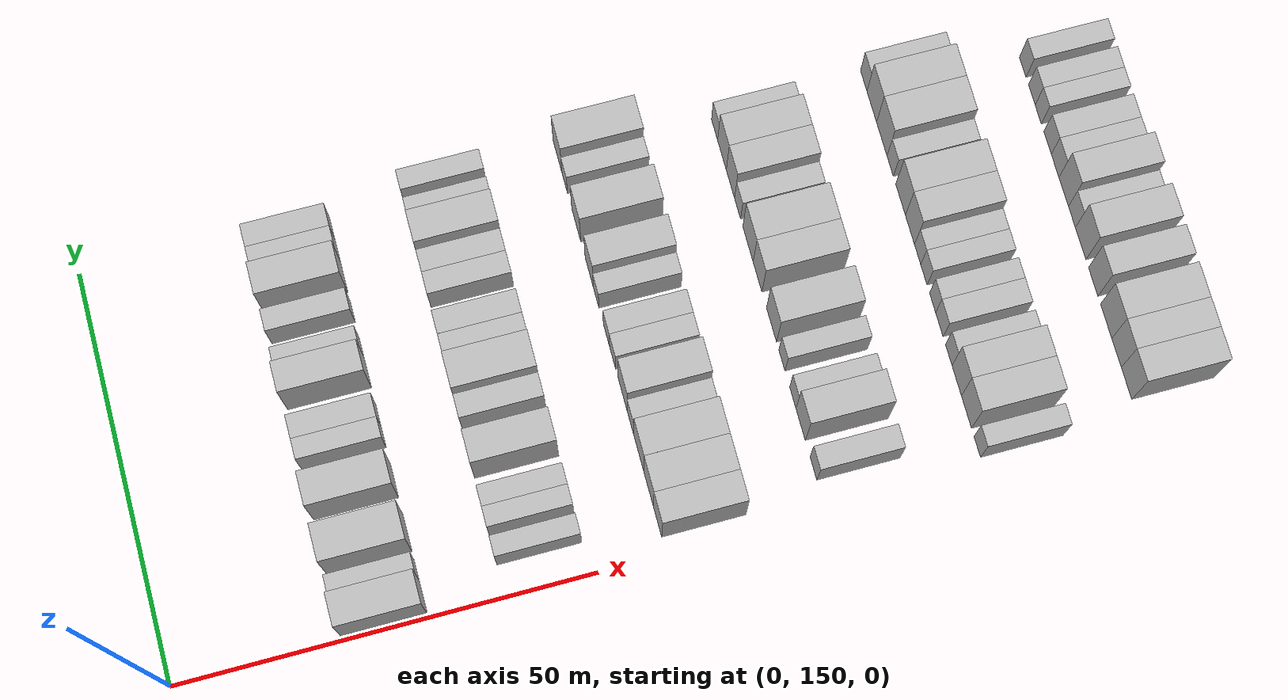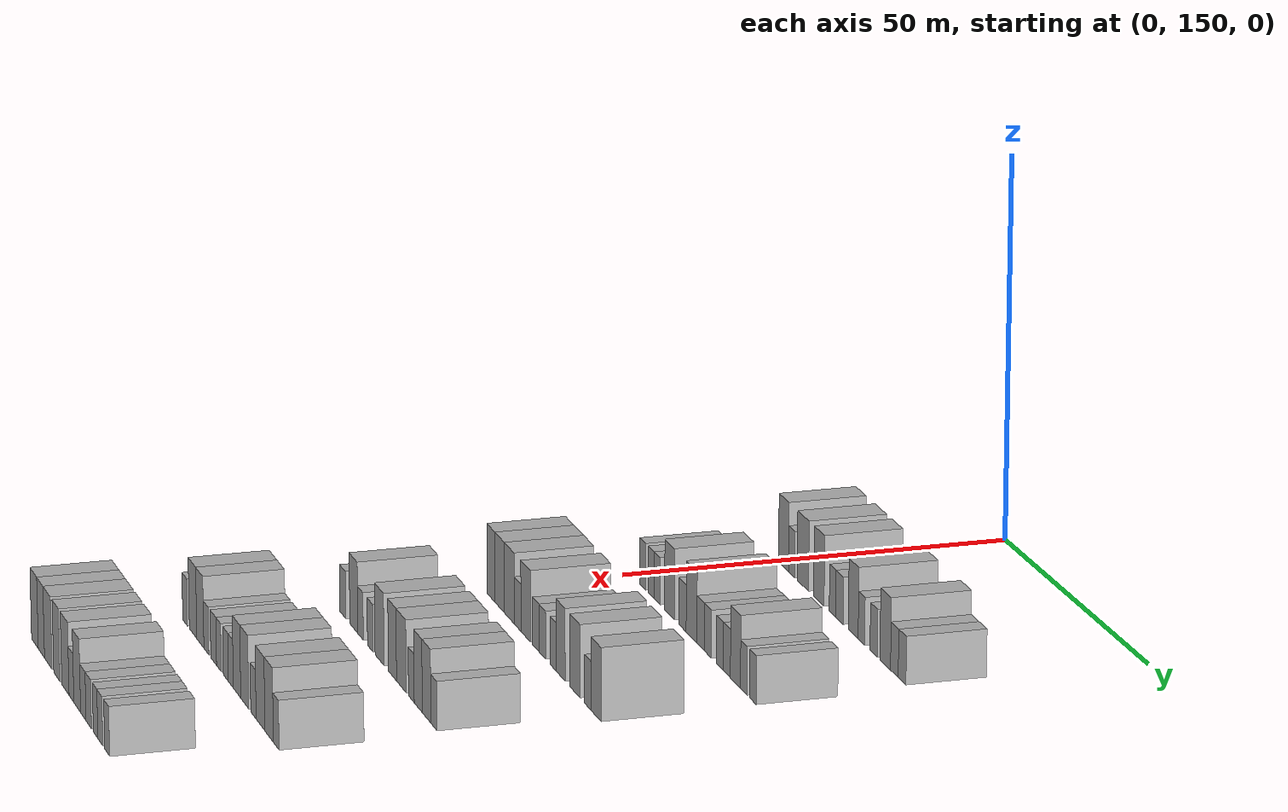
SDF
<sdf version="1.6">
 <world name="default">
  <model name="building_122">
   <static>1</static>
   <pose>25.0000 152.3645 0 0.000000 0.000000 0.000000</pose>
   <link name="link">
    <pose>0 0 4.50 0 0 0</pose>
    <collision name="collision"><geometry><box><size>10.0000 4.0132 9.0000</size></box></geometry></collision>
    <visual name="visual">
     <cast_shadows>0</cast_shadows>
     <geometry><box><size>10.0000 4.0132 9.0000</size></box></geometry>
     <material>
      <script>
       <uri>model://HANNAS_wall/materials/scripts</uri>
       <uri>model://HANNAS_wall/materials/textures</uri>
       <name>vrc/HANNAS_wall</name>
      </script>
     </material>
    </visual>
   </link>
  </model>
  <model name="building_123">
   <static>1</static>
   <pose>25.0000 155.5959 0 0.000000 0.000000 0.000000</pose>
   <link name="link">
    <pose>0 0 3.00 0 0 0</pose>
    <collision name="collision"><geometry><box><size>10.0000 2.4496 6.0000</size></box></geometry></collision>
    <visual name="visual">
     <cast_shadows>0</cast_shadows>
     <geometry><box><size>10.0000 2.4496 6.0000</size></box></geometry>
     <material>
      <script>
       <uri>model://HANNAS_wall/materials/scripts</uri>
       <uri>model://HANNAS_wall/materials/textures</uri>
       <name>vrc/HANNAS_wall</name>
      </script>
     </material>
    </visual>
   </link>
  </model>
  <model name="building_124">
   <static>1</static>
   <pose>25.0000 160.0640 0 0.000000 0.000000 0.000000</pose>
   <link name="link">
    <pose>0 0 4.50 0 0 0</pose>
    <collision name="collision"><geometry><box><size>10.0000 4.4866 9.0000</size></box></geometry></collision>
    <visual name="visual">
     <cast_shadows>0</cast_shadows>
     <geometry><box><size>10.0000 4.4866 9.0000</size></box></geometry>
     <material>
      <script>
       <uri>model://HANNAS_wall/materials/scripts</uri>
       <uri>model://HANNAS_wall/materials/textures</uri>
       <name>vrc/HANNAS_wall</name>
      </script>
     </material>
    </visual>
   </link>
  </model>
  <model name="building_125">
   <static>1</static>
   <pose>25.0000 166.3468 0 0.000000 0.000000 0.000000</pose>
   <link name="link">
    <pose>0 0 4.50 0 0 0</pose>
    <collision name="collision"><geometry><box><size>10.0000 4.0790 9.0000</size></box></geometry></collision>
    <visual name="visual">
     <cast_shadows>0</cast_shadows>
     <geometry><box><size>10.0000 4.0790 9.0000</size></box></geometry>
     <material>
      <script>
       <uri>model://HANNAS_wall/materials/scripts</uri>
       <uri>model://HANNAS_wall/materials/textures</uri>
       <name>vrc/HANNAS_wall</name>
      </script>
     </material>
    </visual>
   </link>
  </model>
  <model name="building_126">
   <static>1</static>
   <pose>25.0000 171.6309 0 0.000000 0.000000 0.000000</pose>
   <link name="link">
    <pose>0 0 3.00 0 0 0</pose>
    <collision name="collision"><geometry><box><size>10.0000 2.4892 6.0000</size></box></geometry></collision>
    <visual name="visual">
     <cast_shadows>0</cast_shadows>
     <geometry><box><size>10.0000 2.4892 6.0000</size></box></geometry>
     <material>
      <script>
       <uri>model://HANNAS_wall/materials/scripts</uri>
       <uri>model://HANNAS_wall/materials/textures</uri>
       <name>vrc/HANNAS_wall</name>
      </script>
     </material>
    </visual>
   </link>
  </model>
  <model name="building_127">
   <static>1</static>
   <pose>25.0000 174.2997 0 0.000000 0.000000 0.000000</pose>
   <link name="link">
    <pose>0 0 3.00 0 0 0</pose>
    <collision name="collision"><geometry><box><size>10.0000 2.8484 6.0000</size></box></geometry></collision>
    <visual name="visual">
     <cast_shadows>0</cast_shadows>
     <geometry><box><size>10.0000 2.8484 6.0000</size></box></geometry>
     <material>
      <script>
       <uri>model://HANNAS_wall/materials/scripts</uri>
       <uri>model://HANNAS_wall/materials/textures</uri>
       <name>vrc/HANNAS_wall</name>
      </script>
     </material>
    </visual>
   </link>
  </model>
  <model name="building_128">
   <static>1</static>
   <pose>25.0000 179.5809 0 0.000000 0.000000 0.000000</pose>
   <link name="link">
    <pose>0 0 4.50 0 0 0</pose>
    <collision name="collision"><geometry><box><size>10.0000 3.7140 9.0000</size></box></geometry></collision>
    <visual name="visual">
     <cast_shadows>0</cast_shadows>
     <geometry><box><size>10.0000 3.7140 9.0000</size></box></geometry>
     <material>
      <script>
       <uri>model://HANNAS_wall/materials/scripts</uri>
       <uri>model://HANNAS_wall/materials/textures</uri>
       <name>vrc/HANNAS_wall</name>
      </script>
     </material>
    </visual>
   </link>
  </model>
  <model name="building_129">
   <static>1</static>
   <pose>25.0000 182.6667 0 0.000000 0.000000 0.000000</pose>
   <link name="link">
    <pose>0 0 3.00 0 0 0</pose>
    <collision name="collision"><geometry><box><size>10.0000 2.4576 6.0000</size></box></geometry></collision>
    <visual name="visual">
     <cast_shadows>0</cast_shadows>
     <geometry><box><size>10.0000 2.4576 6.0000</size></box></geometry>
     <material>
      <script>
       <uri>model://HANNAS_wall/materials/scripts</uri>
       <uri>model://HANNAS_wall/materials/textures</uri>
       <name>vrc/HANNAS_wall</name>
      </script>
     </material>
    </visual>
   </link>
  </model>
  <model name="building_130">
   <static>1</static>
   <pose>25.0000 187.2387 0 0.000000 0.000000 0.000000</pose>
   <link name="link">
    <pose>0 0 3.00 0 0 0</pose>
    <collision name="collision"><geometry><box><size>10.0000 2.6864 6.0000</size></box></geometry></collision>
    <visual name="visual">
     <cast_shadows>0</cast_shadows>
     <geometry><box><size>10.0000 2.6864 6.0000</size></box></geometry>
     <material>
      <script>
       <uri>model://HANNAS_wall/materials/scripts</uri>
       <uri>model://HANNAS_wall/materials/textures</uri>
       <name>vrc/HANNAS_wall</name>
      </script>
     </material>
    </visual>
   </link>
  </model>
  <model name="building_131">
   <static>1</static>
   <pose>25.0000 191.5391 0 0.000000 0.000000 0.000000</pose>
   <link name="link">
    <pose>0 0 4.50 0 0 0</pose>
    <collision name="collision"><geometry><box><size>10.0000 3.9144 9.0000</size></box></geometry></collision>
    <visual name="visual">
     <cast_shadows>0</cast_shadows>
     <geometry><box><size>10.0000 3.9144 9.0000</size></box></geometry>
     <material>
      <script>
       <uri>model://HANNAS_wall/materials/scripts</uri>
       <uri>model://HANNAS_wall/materials/textures</uri>
       <name>vrc/HANNAS_wall</name>
      </script>
     </material>
    </visual>
   </link>
  </model>
  <model name="building_132">
   <static>1</static>
   <pose>25.0000 194.8979 0 0.000000 0.000000 0.000000</pose>
   <link name="link">
    <pose>0 0 3.00 0 0 0</pose>
    <collision name="collision"><geometry><box><size>10.0000 2.8033 6.0000</size></box></geometry></collision>
    <visual name="visual">
     <cast_shadows>0</cast_shadows>
     <geometry><box><size>10.0000 2.8033 6.0000</size></box></geometry>
     <material>
      <script>
       <uri>model://HANNAS_wall/materials/scripts</uri>
       <uri>model://HANNAS_wall/materials/textures</uri>
       <name>vrc/HANNAS_wall</name>
      </script>
     </material>
    </visual>
   </link>
  </model>
  <model name="building_133">
   <static>1</static>
   <pose>25.0000 197.7038 0 0.000000 0.000000 0.000000</pose>
   <link name="link">
    <pose>0 0 3.00 0 0 0</pose>
    <collision name="collision"><geometry><box><size>10.0000 2.8086 6.0000</size></box></geometry></collision>
    <visual name="visual">
     <cast_shadows>0</cast_shadows>
     <geometry><box><size>10.0000 2.8086 6.0000</size></box></geometry>
     <material>
      <script>
       <uri>model://HANNAS_wall/materials/scripts</uri>
       <uri>model://HANNAS_wall/materials/textures</uri>
       <name>vrc/HANNAS_wall</name>
      </script>
     </material>
    </visual>
   </link>
  </model>
  <model name="building_303">
   <static>1</static>
   <pose>44.0000 155.0653 0 0.000000 0.000000 0.000000</pose>
   <link name="link">
    <pose>0 0 3.00 0 0 0</pose>
    <collision name="collision"><geometry><box><size>10.0000 2.4707 6.0000</size></box></geometry></collision>
    <visual name="visual">
     <cast_shadows>0</cast_shadows>
     <geometry><box><size>10.0000 2.4707 6.0000</size></box></geometry>
     <material>
      <script>
       <uri>model://HANNAS_wall/materials/scripts</uri>
       <uri>model://HANNAS_wall/materials/textures</uri>
       <name>vrc/HANNAS_wall</name>
      </script>
     </material>
    </visual>
   </link>
  </model>
  <model name="building_304">
   <static>1</static>
   <pose>44.0000 158.5196 0 0.000000 0.000000 0.000000</pose>
   <link name="link">
    <pose>0 0 3.00 0 0 0</pose>
    <collision name="collision"><geometry><box><size>10.0000 2.4379 6.0000</size></box></geometry></collision>
    <visual name="visual">
     <cast_shadows>0</cast_shadows>
     <geometry><box><size>10.0000 2.4379 6.0000</size></box></geometry>
     <material>
      <script>
       <uri>model://HANNAS_wall/materials/scripts</uri>
       <uri>model://HANNAS_wall/materials/textures</uri>
       <name>vrc/HANNAS_wall</name>
      </script>
     </material>
    </visual>
   </link>
  </model>
  <model name="building_305">
   <static>1</static>
   <pose>44.0000 160.9981 0 0.000000 0.000000 0.000000</pose>
   <link name="link">
    <pose>0 0 3.00 0 0 0</pose>
    <collision name="collision"><geometry><box><size>10.0000 2.5192 6.0000</size></box></geometry></collision>
    <visual name="visual">
     <cast_shadows>0</cast_shadows>
     <geometry><box><size>10.0000 2.5192 6.0000</size></box></geometry>
     <material>
      <script>
       <uri>model://HANNAS_wall/materials/scripts</uri>
       <uri>model://HANNAS_wall/materials/textures</uri>
       <name>vrc/HANNAS_wall</name>
      </script>
     </material>
    </visual>
   </link>
  </model>
  <model name="building_306">
   <static>1</static>
   <pose>44.0000 166.2610 0 0.000000 0.000000 0.000000</pose>
   <link name="link">
    <pose>0 0 4.50 0 0 0</pose>
    <collision name="collision"><geometry><box><size>10.0000 4.0064 9.0000</size></box></geometry></collision>
    <visual name="visual">
     <cast_shadows>0</cast_shadows>
     <geometry><box><size>10.0000 4.0064 9.0000</size></box></geometry>
     <material>
      <script>
       <uri>model://HANNAS_wall/materials/scripts</uri>
       <uri>model://HANNAS_wall/materials/textures</uri>
       <name>vrc/HANNAS_wall</name>
      </script>
     </material>
    </visual>
   </link>
  </model>
  <model name="building_307">
   <static>1</static>
   <pose>44.0000 171.6951 0 0.000000 0.000000 0.000000</pose>
   <link name="link">
    <pose>0 0 3.00 0 0 0</pose>
    <collision name="collision"><geometry><box><size>10.0000 2.8618 6.0000</size></box></geometry></collision>
    <visual name="visual">
     <cast_shadows>0</cast_shadows>
     <geometry><box><size>10.0000 2.8618 6.0000</size></box></geometry>
     <material>
      <script>
       <uri>model://HANNAS_wall/materials/scripts</uri>
       <uri>model://HANNAS_wall/materials/textures</uri>
       <name>vrc/HANNAS_wall</name>
      </script>
     </material>
    </visual>
   </link>
  </model>
  <model name="building_308">
   <static>1</static>
   <pose>44.0000 175.3361 0 0.000000 0.000000 0.000000</pose>
   <link name="link">
    <pose>0 0 4.50 0 0 0</pose>
    <collision name="collision"><geometry><box><size>10.0000 4.4201 9.0000</size></box></geometry></collision>
    <visual name="visual">
     <cast_shadows>0</cast_shadows>
     <geometry><box><size>10.0000 4.4201 9.0000</size></box></geometry>
     <material>
      <script>
       <uri>model://HANNAS_wall/materials/scripts</uri>
       <uri>model://HANNAS_wall/materials/textures</uri>
       <name>vrc/HANNAS_wall</name>
      </script>
     </material>
    </visual>
   </link>
  </model>
  <model name="building_309">
   <static>1</static>
   <pose>44.0000 178.9982 0 0.000000 0.000000 0.000000</pose>
   <link name="link">
    <pose>0 0 3.00 0 0 0</pose>
    <collision name="collision"><geometry><box><size>10.0000 2.9042 6.0000</size></box></geometry></collision>
    <visual name="visual">
     <cast_shadows>0</cast_shadows>
     <geometry><box><size>10.0000 2.9042 6.0000</size></box></geometry>
     <material>
      <script>
       <uri>model://HANNAS_wall/materials/scripts</uri>
       <uri>model://HANNAS_wall/materials/textures</uri>
       <name>vrc/HANNAS_wall</name>
      </script>
     </material>
    </visual>
   </link>
  </model>
  <model name="building_310">
   <static>1</static>
   <pose>44.0000 181.9020 0 0.000000 0.000000 0.000000</pose>
   <link name="link">
    <pose>0 0 3.00 0 0 0</pose>
    <collision name="collision"><geometry><box><size>10.0000 2.9032 6.0000</size></box></geometry></collision>
    <visual name="visual">
     <cast_shadows>0</cast_shadows>
     <geometry><box><size>10.0000 2.9032 6.0000</size></box></geometry>
     <material>
      <script>
       <uri>model://HANNAS_wall/materials/scripts</uri>
       <uri>model://HANNAS_wall/materials/textures</uri>
       <name>vrc/HANNAS_wall</name>
      </script>
     </material>
    </visual>
   </link>
  </model>
  <model name="building_311">
   <static>1</static>
   <pose>44.0000 186.7255 0 0.000000 0.000000 0.000000</pose>
   <link name="link">
    <pose>0 0 3.00 0 0 0</pose>
    <collision name="collision"><geometry><box><size>10.0000 2.7439 6.0000</size></box></geometry></collision>
    <visual name="visual">
     <cast_shadows>0</cast_shadows>
     <geometry><box><size>10.0000 2.7439 6.0000</size></box></geometry>
     <material>
      <script>
       <uri>model://HANNAS_wall/materials/scripts</uri>
       <uri>model://HANNAS_wall/materials/textures</uri>
       <name>vrc/HANNAS_wall</name>
      </script>
     </material>
    </visual>
   </link>
  </model>
  <model name="building_312">
   <static>1</static>
   <pose>44.0000 189.4844 0 0.000000 0.000000 0.000000</pose>
   <link name="link">
    <pose>0 0 3.00 0 0 0</pose>
    <collision name="collision"><geometry><box><size>10.0000 2.7739 6.0000</size></box></geometry></collision>
    <visual name="visual">
     <cast_shadows>0</cast_shadows>
     <geometry><box><size>10.0000 2.7739 6.0000</size></box></geometry>
     <material>
      <script>
       <uri>model://HANNAS_wall/materials/scripts</uri>
       <uri>model://HANNAS_wall/materials/textures</uri>
       <name>vrc/HANNAS_wall</name>
      </script>
     </material>
    </visual>
   </link>
  </model>
  <model name="building_313">
   <static>1</static>
   <pose>44.0000 192.8471 0 0.000000 0.000000 0.000000</pose>
   <link name="link">
    <pose>0 0 4.50 0 0 0</pose>
    <collision name="collision"><geometry><box><size>10.0000 3.9515 9.0000</size></box></geometry></collision>
    <visual name="visual">
     <cast_shadows>0</cast_shadows>
     <geometry><box><size>10.0000 3.9515 9.0000</size></box></geometry>
     <material>
      <script>
       <uri>model://HANNAS_wall/materials/scripts</uri>
       <uri>model://HANNAS_wall/materials/textures</uri>
       <name>vrc/HANNAS_wall</name>
      </script>
     </material>
    </visual>
   </link>
  </model>
  <model name="building_314">
   <static>1</static>
   <pose>44.0000 196.1030 0 0.000000 0.000000 0.000000</pose>
   <link name="link">
    <pose>0 0 3.00 0 0 0</pose>
    <collision name="collision"><geometry><box><size>10.0000 2.5604 6.0000</size></box></geometry></collision>
    <visual name="visual">
     <cast_shadows>0</cast_shadows>
     <geometry><box><size>10.0000 2.5604 6.0000</size></box></geometry>
     <material>
      <script>
       <uri>model://HANNAS_wall/materials/scripts</uri>
       <uri>model://HANNAS_wall/materials/textures</uri>
       <name>vrc/HANNAS_wall</name>
      </script>
     </material>
    </visual>
   </link>
  </model>
  <model name="building_315">
   <static>1</static>
   <pose>44.0000 199.6245 0 0.000000 0.000000 0.000000</pose>
   <link name="link">
    <pose>0 0 3.00 0 0 0</pose>
    <collision name="collision"><geometry><box><size>10.0000 2.4826 6.0000</size></box></geometry></collision>
    <visual name="visual">
     <cast_shadows>0</cast_shadows>
     <geometry><box><size>10.0000 2.4826 6.0000</size></box></geometry>
     <material>
      <script>
       <uri>model://HANNAS_wall/materials/scripts</uri>
       <uri>model://HANNAS_wall/materials/textures</uri>
       <name>vrc/HANNAS_wall</name>
      </script>
     </material>
    </visual>
   </link>
  </model>
  <model name="building_471">
   <static>1</static>
   <pose>63.0000 153.9142 0 0.000000 0.000000 0.000000</pose>
   <link name="link">
    <pose>0 0 4.50 0 0 0</pose>
    <collision name="collision"><geometry><box><size>10.0000 3.6830 9.0000</size></box></geometry></collision>
    <visual name="visual">
     <cast_shadows>0</cast_shadows>
     <geometry><box><size>10.0000 3.6830 9.0000</size></box></geometry>
     <material>
      <script>
       <uri>model://HANNAS_wall/materials/scripts</uri>
       <uri>model://HANNAS_wall/materials/textures</uri>
       <name>vrc/HANNAS_wall</name>
      </script>
     </material>
    </visual>
   </link>
  </model>
  <model name="building_472">
   <static>1</static>
   <pose>63.0000 157.8846 0 0.000000 0.000000 0.000000</pose>
   <link name="link">
    <pose>0 0 4.50 0 0 0</pose>
    <collision name="collision"><geometry><box><size>10.0000 4.2578 9.0000</size></box></geometry></collision>
    <visual name="visual">
     <cast_shadows>0</cast_shadows>
     <geometry><box><size>10.0000 4.2578 9.0000</size></box></geometry>
     <material>
      <script>
       <uri>model://HANNAS_wall/materials/scripts</uri>
       <uri>model://HANNAS_wall/materials/textures</uri>
       <name>vrc/HANNAS_wall</name>
      </script>
     </material>
    </visual>
   </link>
  </model>
  <model name="building_473">
   <static>1</static>
   <pose>63.0000 162.2066 0 0.000000 0.000000 0.000000</pose>
   <link name="link">
    <pose>0 0 4.50 0 0 0</pose>
    <collision name="collision"><geometry><box><size>10.0000 4.3861 9.0000</size></box></geometry></collision>
    <visual name="visual">
     <cast_shadows>0</cast_shadows>
     <geometry><box><size>10.0000 4.3861 9.0000</size></box></geometry>
     <material>
      <script>
       <uri>model://HANNAS_wall/materials/scripts</uri>
       <uri>model://HANNAS_wall/materials/textures</uri>
       <name>vrc/HANNAS_wall</name>
      </script>
     </material>
    </visual>
   </link>
  </model>
  <model name="building_474">
   <static>1</static>
   <pose>63.0000 165.8925 0 0.000000 0.000000 0.000000</pose>
   <link name="link">
    <pose>0 0 3.00 0 0 0</pose>
    <collision name="collision"><geometry><box><size>10.0000 2.9858 6.0000</size></box></geometry></collision>
    <visual name="visual">
     <cast_shadows>0</cast_shadows>
     <geometry><box><size>10.0000 2.9858 6.0000</size></box></geometry>
     <material>
      <script>
       <uri>model://HANNAS_wall/materials/scripts</uri>
       <uri>model://HANNAS_wall/materials/textures</uri>
       <name>vrc/HANNAS_wall</name>
      </script>
     </material>
    </visual>
   </link>
  </model>
  <model name="building_475">
   <static>1</static>
   <pose>63.0000 169.4685 0 0.000000 0.000000 0.000000</pose>
   <link name="link">
    <pose>0 0 4.50 0 0 0</pose>
    <collision name="collision"><geometry><box><size>10.0000 4.1662 9.0000</size></box></geometry></collision>
    <visual name="visual">
     <cast_shadows>0</cast_shadows>
     <geometry><box><size>10.0000 4.1662 9.0000</size></box></geometry>
     <material>
      <script>
       <uri>model://HANNAS_wall/materials/scripts</uri>
       <uri>model://HANNAS_wall/materials/textures</uri>
       <name>vrc/HANNAS_wall</name>
      </script>
     </material>
    </visual>
   </link>
  </model>
  <model name="building_476">
   <static>1</static>
   <pose>63.0000 173.9445 0 0.000000 0.000000 0.000000</pose>
   <link name="link">
    <pose>0 0 3.00 0 0 0</pose>
    <collision name="collision"><geometry><box><size>10.0000 2.7858 6.0000</size></box></geometry></collision>
    <visual name="visual">
     <cast_shadows>0</cast_shadows>
     <geometry><box><size>10.0000 2.7858 6.0000</size></box></geometry>
     <material>
      <script>
       <uri>model://HANNAS_wall/materials/scripts</uri>
       <uri>model://HANNAS_wall/materials/textures</uri>
       <name>vrc/HANNAS_wall</name>
      </script>
     </material>
    </visual>
   </link>
  </model>
  <model name="building_477">
   <static>1</static>
   <pose>63.0000 176.7683 0 0.000000 0.000000 0.000000</pose>
   <link name="link">
    <pose>0 0 3.00 0 0 0</pose>
    <collision name="collision"><geometry><box><size>10.0000 2.8617 6.0000</size></box></geometry></collision>
    <visual name="visual">
     <cast_shadows>0</cast_shadows>
     <geometry><box><size>10.0000 2.8617 6.0000</size></box></geometry>
     <material>
      <script>
       <uri>model://HANNAS_wall/materials/scripts</uri>
       <uri>model://HANNAS_wall/materials/textures</uri>
       <name>vrc/HANNAS_wall</name>
      </script>
     </material>
    </visual>
   </link>
  </model>
  <model name="building_478">
   <static>1</static>
   <pose>63.0000 181.4853 0 0.000000 0.000000 0.000000</pose>
   <link name="link">
    <pose>0 0 3.00 0 0 0</pose>
    <collision name="collision"><geometry><box><size>10.0000 2.5724 6.0000</size></box></geometry></collision>
    <visual name="visual">
     <cast_shadows>0</cast_shadows>
     <geometry><box><size>10.0000 2.5724 6.0000</size></box></geometry>
     <material>
      <script>
       <uri>model://HANNAS_wall/materials/scripts</uri>
       <uri>model://HANNAS_wall/materials/textures</uri>
       <name>vrc/HANNAS_wall</name>
      </script>
     </material>
    </visual>
   </link>
  </model>
  <model name="building_479">
   <static>1</static>
   <pose>63.0000 184.6770 0 0.000000 0.000000 0.000000</pose>
   <link name="link">
    <pose>0 0 4.50 0 0 0</pose>
    <collision name="collision"><geometry><box><size>10.0000 3.8110 9.0000</size></box></geometry></collision>
    <visual name="visual">
     <cast_shadows>0</cast_shadows>
     <geometry><box><size>10.0000 3.8110 9.0000</size></box></geometry>
     <material>
      <script>
       <uri>model://HANNAS_wall/materials/scripts</uri>
       <uri>model://HANNAS_wall/materials/textures</uri>
       <name>vrc/HANNAS_wall</name>
      </script>
     </material>
    </visual>
   </link>
  </model>
  <model name="building_480">
   <static>1</static>
   <pose>63.0000 190.6893 0 0.000000 0.000000 0.000000</pose>
   <link name="link">
    <pose>0 0 4.50 0 0 0</pose>
    <collision name="collision"><geometry><box><size>10.0000 4.2136 9.0000</size></box></geometry></collision>
    <visual name="visual">
     <cast_shadows>0</cast_shadows>
     <geometry><box><size>10.0000 4.2136 9.0000</size></box></geometry>
     <material>
      <script>
       <uri>model://HANNAS_wall/materials/scripts</uri>
       <uri>model://HANNAS_wall/materials/textures</uri>
       <name>vrc/HANNAS_wall</name>
      </script>
     </material>
    </visual>
   </link>
  </model>
  <model name="building_481">
   <static>1</static>
   <pose>63.0000 196.0757 0 0.000000 0.000000 0.000000</pose>
   <link name="link">
    <pose>0 0 3.00 0 0 0</pose>
    <collision name="collision"><geometry><box><size>10.0000 2.5591 6.0000</size></box></geometry></collision>
    <visual name="visual">
     <cast_shadows>0</cast_shadows>
     <geometry><box><size>10.0000 2.5591 6.0000</size></box></geometry>
     <material>
      <script>
       <uri>model://HANNAS_wall/materials/scripts</uri>
       <uri>model://HANNAS_wall/materials/textures</uri>
       <name>vrc/HANNAS_wall</name>
      </script>
     </material>
    </visual>
   </link>
  </model>
  <model name="building_482">
   <static>1</static>
   <pose>63.0000 199.4467 0 0.000000 0.000000 0.000000</pose>
   <link name="link">
    <pose>0 0 4.50 0 0 0</pose>
    <collision name="collision"><geometry><box><size>10.0000 4.1828 9.0000</size></box></geometry></collision>
    <visual name="visual">
     <cast_shadows>0</cast_shadows>
     <geometry><box><size>10.0000 4.1828 9.0000</size></box></geometry>
     <material>
      <script>
       <uri>model://HANNAS_wall/materials/scripts</uri>
       <uri>model://HANNAS_wall/materials/textures</uri>
       <name>vrc/HANNAS_wall</name>
      </script>
     </material>
    </visual>
   </link>
  </model>
  <model name="building_651">
   <static>1</static>
   <pose>82.0000 155.2696 0 0.000000 0.000000 0.000000</pose>
   <link name="link">
    <pose>0 0 3.00 0 0 0</pose>
    <collision name="collision"><geometry><box><size>10.0000 2.8275 6.0000</size></box></geometry></collision>
    <visual name="visual">
     <cast_shadows>0</cast_shadows>
     <geometry><box><size>10.0000 2.8275 6.0000</size></box></geometry>
     <material>
      <script>
       <uri>model://HANNAS_wall/materials/scripts</uri>
       <uri>model://HANNAS_wall/materials/textures</uri>
       <name>vrc/HANNAS_wall</name>
      </script>
     </material>
    </visual>
   </link>
  </model>
  <model name="building_652">
   <static>1</static>
   <pose>82.0000 160.6343 0 0.000000 0.000000 0.000000</pose>
   <link name="link">
    <pose>0 0 4.50 0 0 0</pose>
    <collision name="collision"><geometry><box><size>10.0000 3.9019 9.0000</size></box></geometry></collision>
    <visual name="visual">
     <cast_shadows>0</cast_shadows>
     <geometry><box><size>10.0000 3.9019 9.0000</size></box></geometry>
     <material>
      <script>
       <uri>model://HANNAS_wall/materials/scripts</uri>
       <uri>model://HANNAS_wall/materials/textures</uri>
       <name>vrc/HANNAS_wall</name>
      </script>
     </material>
    </visual>
   </link>
  </model>
  <model name="building_653">
   <static>1</static>
   <pose>82.0000 163.9117 0 0.000000 0.000000 0.000000</pose>
   <link name="link">
    <pose>0 0 3.00 0 0 0</pose>
    <collision name="collision"><geometry><box><size>10.0000 2.6529 6.0000</size></box></geometry></collision>
    <visual name="visual">
     <cast_shadows>0</cast_shadows>
     <geometry><box><size>10.0000 2.6529 6.0000</size></box></geometry>
     <material>
      <script>
       <uri>model://HANNAS_wall/materials/scripts</uri>
       <uri>model://HANNAS_wall/materials/textures</uri>
       <name>vrc/HANNAS_wall</name>
      </script>
     </material>
    </visual>
   </link>
  </model>
  <model name="building_654">
   <static>1</static>
   <pose>82.0000 168.5402 0 0.000000 0.000000 0.000000</pose>
   <link name="link">
    <pose>0 0 3.00 0 0 0</pose>
    <collision name="collision"><geometry><box><size>10.0000 2.6040 6.0000</size></box></geometry></collision>
    <visual name="visual">
     <cast_shadows>0</cast_shadows>
     <geometry><box><size>10.0000 2.6040 6.0000</size></box></geometry>
     <material>
      <script>
       <uri>model://HANNAS_wall/materials/scripts</uri>
       <uri>model://HANNAS_wall/materials/textures</uri>
       <name>vrc/HANNAS_wall</name>
      </script>
     </material>
    </visual>
   </link>
  </model>
  <model name="building_655">
   <static>1</static>
   <pose>82.0000 172.9848 0 0.000000 0.000000 0.000000</pose>
   <link name="link">
    <pose>0 0 4.50 0 0 0</pose>
    <collision name="collision"><geometry><box><size>10.0000 4.2851 9.0000</size></box></geometry></collision>
    <visual name="visual">
     <cast_shadows>0</cast_shadows>
     <geometry><box><size>10.0000 4.2851 9.0000</size></box></geometry>
     <material>
      <script>
       <uri>model://HANNAS_wall/materials/scripts</uri>
       <uri>model://HANNAS_wall/materials/textures</uri>
       <name>vrc/HANNAS_wall</name>
      </script>
     </material>
    </visual>
   </link>
  </model>
  <model name="building_656">
   <static>1</static>
   <pose>82.0000 179.0291 0 0.000000 0.000000 0.000000</pose>
   <link name="link">
    <pose>0 0 4.50 0 0 0</pose>
    <collision name="collision"><geometry><box><size>10.0000 3.8035 9.0000</size></box></geometry></collision>
    <visual name="visual">
     <cast_shadows>0</cast_shadows>
     <geometry><box><size>10.0000 3.8035 9.0000</size></box></geometry>
     <material>
      <script>
       <uri>model://HANNAS_wall/materials/scripts</uri>
       <uri>model://HANNAS_wall/materials/textures</uri>
       <name>vrc/HANNAS_wall</name>
      </script>
     </material>
    </visual>
   </link>
  </model>
  <model name="building_657">
   <static>1</static>
   <pose>82.0000 183.1807 0 0.000000 0.000000 0.000000</pose>
   <link name="link">
    <pose>0 0 4.50 0 0 0</pose>
    <collision name="collision"><geometry><box><size>10.0000 4.4997 9.0000</size></box></geometry></collision>
    <visual name="visual">
     <cast_shadows>0</cast_shadows>
     <geometry><box><size>10.0000 4.4997 9.0000</size></box></geometry>
     <material>
      <script>
       <uri>model://HANNAS_wall/materials/scripts</uri>
       <uri>model://HANNAS_wall/materials/textures</uri>
       <name>vrc/HANNAS_wall</name>
      </script>
     </material>
    </visual>
   </link>
  </model>
  <model name="building_658">
   <static>1</static>
   <pose>82.0000 187.7601 0 0.000000 0.000000 0.000000</pose>
   <link name="link">
    <pose>0 0 3.00 0 0 0</pose>
    <collision name="collision"><geometry><box><size>10.0000 2.6592 6.0000</size></box></geometry></collision>
    <visual name="visual">
     <cast_shadows>0</cast_shadows>
     <geometry><box><size>10.0000 2.6592 6.0000</size></box></geometry>
     <material>
      <script>
       <uri>model://HANNAS_wall/materials/scripts</uri>
       <uri>model://HANNAS_wall/materials/textures</uri>
       <name>vrc/HANNAS_wall</name>
      </script>
     </material>
    </visual>
   </link>
  </model>
  <model name="building_659">
   <static>1</static>
   <pose>82.0000 190.9054 0 0.000000 0.000000 0.000000</pose>
   <link name="link">
    <pose>0 0 4.50 0 0 0</pose>
    <collision name="collision"><geometry><box><size>10.0000 3.6314 9.0000</size></box></geometry></collision>
    <visual name="visual">
     <cast_shadows>0</cast_shadows>
     <geometry><box><size>10.0000 3.6314 9.0000</size></box></geometry>
     <material>
      <script>
       <uri>model://HANNAS_wall/materials/scripts</uri>
       <uri>model://HANNAS_wall/materials/textures</uri>
       <name>vrc/HANNAS_wall</name>
      </script>
     </material>
    </visual>
   </link>
  </model>
  <model name="building_660">
   <static>1</static>
   <pose>82.0000 194.6501 0 0.000000 0.000000 0.000000</pose>
   <link name="link">
    <pose>0 0 4.50 0 0 0</pose>
    <collision name="collision"><geometry><box><size>10.0000 3.8581 9.0000</size></box></geometry></collision>
    <visual name="visual">
     <cast_shadows>0</cast_shadows>
     <geometry><box><size>10.0000 3.8581 9.0000</size></box></geometry>
     <material>
      <script>
       <uri>model://HANNAS_wall/materials/scripts</uri>
       <uri>model://HANNAS_wall/materials/textures</uri>
       <name>vrc/HANNAS_wall</name>
      </script>
     </material>
    </visual>
   </link>
  </model>
  <model name="building_661">
   <static>1</static>
   <pose>82.0000 197.9482 0 0.000000 0.000000 0.000000</pose>
   <link name="link">
    <pose>0 0 3.00 0 0 0</pose>
    <collision name="collision"><geometry><box><size>10.0000 2.7381 6.0000</size></box></geometry></collision>
    <visual name="visual">
     <cast_shadows>0</cast_shadows>
     <geometry><box><size>10.0000 2.7381 6.0000</size></box></geometry>
     <material>
      <script>
       <uri>model://HANNAS_wall/materials/scripts</uri>
       <uri>model://HANNAS_wall/materials/textures</uri>
       <name>vrc/HANNAS_wall</name>
      </script>
     </material>
    </visual>
   </link>
  </model>
  <model name="building_822">
   <static>1</static>
   <pose>101.0000 152.7990 0 0.000000 0.000000 0.000000</pose>
   <link name="link">
    <pose>0 0 3.00 0 0 0</pose>
    <collision name="collision"><geometry><box><size>10.0000 2.5572 6.0000</size></box></geometry></collision>
    <visual name="visual">
     <cast_shadows>0</cast_shadows>
     <geometry><box><size>10.0000 2.5572 6.0000</size></box></geometry>
     <material>
      <script>
       <uri>model://HANNAS_wall/materials/scripts</uri>
       <uri>model://HANNAS_wall/materials/textures</uri>
       <name>vrc/HANNAS_wall</name>
      </script>
     </material>
    </visual>
   </link>
  </model>
  <model name="building_823">
   <static>1</static>
   <pose>101.0000 157.0725 0 0.000000 0.000000 0.000000</pose>
   <link name="link">
    <pose>0 0 4.50 0 0 0</pose>
    <collision name="collision"><geometry><box><size>10.0000 3.9898 9.0000</size></box></geometry></collision>
    <visual name="visual">
     <cast_shadows>0</cast_shadows>
     <geometry><box><size>10.0000 3.9898 9.0000</size></box></geometry>
     <material>
      <script>
       <uri>model://HANNAS_wall/materials/scripts</uri>
       <uri>model://HANNAS_wall/materials/textures</uri>
       <name>vrc/HANNAS_wall</name>
      </script>
     </material>
    </visual>
   </link>
  </model>
  <model name="building_824">
   <static>1</static>
   <pose>101.0000 160.9345 0 0.000000 0.000000 0.000000</pose>
   <link name="link">
    <pose>0 0 4.50 0 0 0</pose>
    <collision name="collision"><geometry><box><size>10.0000 3.7341 9.0000</size></box></geometry></collision>
    <visual name="visual">
     <cast_shadows>0</cast_shadows>
     <geometry><box><size>10.0000 3.7341 9.0000</size></box></geometry>
     <material>
      <script>
       <uri>model://HANNAS_wall/materials/scripts</uri>
       <uri>model://HANNAS_wall/materials/textures</uri>
       <name>vrc/HANNAS_wall</name>
      </script>
     </material>
    </visual>
   </link>
  </model>
  <model name="building_825">
   <static>1</static>
   <pose>101.0000 164.1158 0 0.000000 0.000000 0.000000</pose>
   <link name="link">
    <pose>0 0 3.00 0 0 0</pose>
    <collision name="collision"><geometry><box><size>10.0000 2.6286 6.0000</size></box></geometry></collision>
    <visual name="visual">
     <cast_shadows>0</cast_shadows>
     <geometry><box><size>10.0000 2.6286 6.0000</size></box></geometry>
     <material>
      <script>
       <uri>model://HANNAS_wall/materials/scripts</uri>
       <uri>model://HANNAS_wall/materials/textures</uri>
       <name>vrc/HANNAS_wall</name>
      </script>
     </material>
    </visual>
   </link>
  </model>
  <model name="building_826">
   <static>1</static>
   <pose>101.0000 167.9232 0 0.000000 0.000000 0.000000</pose>
   <link name="link">
    <pose>0 0 3.00 0 0 0</pose>
    <collision name="collision"><geometry><box><size>10.0000 2.9861 6.0000</size></box></geometry></collision>
    <visual name="visual">
     <cast_shadows>0</cast_shadows>
     <geometry><box><size>10.0000 2.9861 6.0000</size></box></geometry>
     <material>
      <script>
       <uri>model://HANNAS_wall/materials/scripts</uri>
       <uri>model://HANNAS_wall/materials/textures</uri>
       <name>vrc/HANNAS_wall</name>
      </script>
     </material>
    </visual>
   </link>
  </model>
  <model name="building_827">
   <static>1</static>
   <pose>101.0000 170.6661 0 0.000000 0.000000 0.000000</pose>
   <link name="link">
    <pose>0 0 3.00 0 0 0</pose>
    <collision name="collision"><geometry><box><size>10.0000 2.4998 6.0000</size></box></geometry></collision>
    <visual name="visual">
     <cast_shadows>0</cast_shadows>
     <geometry><box><size>10.0000 2.4998 6.0000</size></box></geometry>
     <material>
      <script>
       <uri>model://HANNAS_wall/materials/scripts</uri>
       <uri>model://HANNAS_wall/materials/textures</uri>
       <name>vrc/HANNAS_wall</name>
      </script>
     </material>
    </visual>
   </link>
  </model>
  <model name="building_828">
   <static>1</static>
   <pose>101.0000 174.2116 0 0.000000 0.000000 0.000000</pose>
   <link name="link">
    <pose>0 0 3.00 0 0 0</pose>
    <collision name="collision"><geometry><box><size>10.0000 2.5912 6.0000</size></box></geometry></collision>
    <visual name="visual">
     <cast_shadows>0</cast_shadows>
     <geometry><box><size>10.0000 2.5912 6.0000</size></box></geometry>
     <material>
      <script>
       <uri>model://HANNAS_wall/materials/scripts</uri>
       <uri>model://HANNAS_wall/materials/textures</uri>
       <name>vrc/HANNAS_wall</name>
      </script>
     </material>
    </visual>
   </link>
  </model>
  <model name="building_829">
   <static>1</static>
   <pose>101.0000 176.7878 0 0.000000 0.000000 0.000000</pose>
   <link name="link">
    <pose>0 0 3.00 0 0 0</pose>
    <collision name="collision"><geometry><box><size>10.0000 2.5611 6.0000</size></box></geometry></collision>
    <visual name="visual">
     <cast_shadows>0</cast_shadows>
     <geometry><box><size>10.0000 2.5611 6.0000</size></box></geometry>
     <material>
      <script>
       <uri>model://HANNAS_wall/materials/scripts</uri>
       <uri>model://HANNAS_wall/materials/textures</uri>
       <name>vrc/HANNAS_wall</name>
      </script>
     </material>
    </visual>
   </link>
  </model>
  <model name="building_830">
   <static>1</static>
   <pose>101.0000 179.9365 0 0.000000 0.000000 0.000000</pose>
   <link name="link">
    <pose>0 0 4.50 0 0 0</pose>
    <collision name="collision"><geometry><box><size>10.0000 3.7363 9.0000</size></box></geometry></collision>
    <visual name="visual">
     <cast_shadows>0</cast_shadows>
     <geometry><box><size>10.0000 3.7363 9.0000</size></box></geometry>
     <material>
      <script>
       <uri>model://HANNAS_wall/materials/scripts</uri>
       <uri>model://HANNAS_wall/materials/textures</uri>
       <name>vrc/HANNAS_wall</name>
      </script>
     </material>
    </visual>
   </link>
  </model>
  <model name="building_831">
   <static>1</static>
   <pose>101.0000 183.8091 0 0.000000 0.000000 0.000000</pose>
   <link name="link">
    <pose>0 0 4.50 0 0 0</pose>
    <collision name="collision"><geometry><box><size>10.0000 4.0088 9.0000</size></box></geometry></collision>
    <visual name="visual">
     <cast_shadows>0</cast_shadows>
     <geometry><box><size>10.0000 4.0088 9.0000</size></box></geometry>
     <material>
      <script>
       <uri>model://HANNAS_wall/materials/scripts</uri>
       <uri>model://HANNAS_wall/materials/textures</uri>
       <name>vrc/HANNAS_wall</name>
      </script>
     </material>
    </visual>
   </link>
  </model>
  <model name="building_832">
   <static>1</static>
   <pose>101.0000 188.1411 0 0.000000 0.000000 0.000000</pose>
   <link name="link">
    <pose>0 0 3.00 0 0 0</pose>
    <collision name="collision"><geometry><box><size>10.0000 2.6553 6.0000</size></box></geometry></collision>
    <visual name="visual">
     <cast_shadows>0</cast_shadows>
     <geometry><box><size>10.0000 2.6553 6.0000</size></box></geometry>
     <material>
      <script>
       <uri>model://HANNAS_wall/materials/scripts</uri>
       <uri>model://HANNAS_wall/materials/textures</uri>
       <name>vrc/HANNAS_wall</name>
      </script>
     </material>
    </visual>
   </link>
  </model>
  <model name="building_833">
   <static>1</static>
   <pose>101.0000 191.6567 0 0.000000 0.000000 0.000000</pose>
   <link name="link">
    <pose>0 0 4.50 0 0 0</pose>
    <collision name="collision"><geometry><box><size>10.0000 4.3758 9.0000</size></box></geometry></collision>
    <visual name="visual">
     <cast_shadows>0</cast_shadows>
     <geometry><box><size>10.0000 4.3758 9.0000</size></box></geometry>
     <material>
      <script>
       <uri>model://HANNAS_wall/materials/scripts</uri>
       <uri>model://HANNAS_wall/materials/textures</uri>
       <name>vrc/HANNAS_wall</name>
      </script>
     </material>
    </visual>
   </link>
  </model>
  <model name="building_834">
   <static>1</static>
   <pose>101.0000 195.8867 0 0.000000 0.000000 0.000000</pose>
   <link name="link">
    <pose>0 0 4.50 0 0 0</pose>
    <collision name="collision"><geometry><box><size>10.0000 4.0842 9.0000</size></box></geometry></collision>
    <visual name="visual">
     <cast_shadows>0</cast_shadows>
     <geometry><box><size>10.0000 4.0842 9.0000</size></box></geometry>
     <material>
      <script>
       <uri>model://HANNAS_wall/materials/scripts</uri>
       <uri>model://HANNAS_wall/materials/textures</uri>
       <name>vrc/HANNAS_wall</name>
      </script>
     </material>
    </visual>
   </link>
  </model>
  <model name="building_835">
   <static>1</static>
   <pose>101.0000 199.3019 0 0.000000 0.000000 0.000000</pose>
   <link name="link">
    <pose>0 0 3.00 0 0 0</pose>
    <collision name="collision"><geometry><box><size>10.0000 2.7462 6.0000</size></box></geometry></collision>
    <visual name="visual">
     <cast_shadows>0</cast_shadows>
     <geometry><box><size>10.0000 2.7462 6.0000</size></box></geometry>
     <material>
      <script>
       <uri>model://HANNAS_wall/materials/scripts</uri>
       <uri>model://HANNAS_wall/materials/textures</uri>
       <name>vrc/HANNAS_wall</name>
      </script>
     </material>
    </visual>
   </link>
  </model>
  <model name="building_990">
   <static>1</static>
   <pose>120.0000 155.5145 0 0.000000 0.000000 0.000000</pose>
   <link name="link">
    <pose>0 0 4.50 0 0 0</pose>
    <collision name="collision"><geometry><box><size>10.0000 3.9492 9.0000</size></box></geometry></collision>
    <visual name="visual">
     <cast_shadows>0</cast_shadows>
     <geometry><box><size>10.0000 3.9492 9.0000</size></box></geometry>
     <material>
      <script>
       <uri>model://HANNAS_wall/materials/scripts</uri>
       <uri>model://HANNAS_wall/materials/textures</uri>
       <name>vrc/HANNAS_wall</name>
      </script>
     </material>
    </visual>
   </link>
  </model>
  <model name="building_991">
   <static>1</static>
   <pose>120.0000 159.2935 0 0.000000 0.000000 0.000000</pose>
   <link name="link">
    <pose>0 0 4.50 0 0 0</pose>
    <collision name="collision"><geometry><box><size>10.0000 3.6088 9.0000</size></box></geometry></collision>
    <visual name="visual">
     <cast_shadows>0</cast_shadows>
     <geometry><box><size>10.0000 3.6088 9.0000</size></box></geometry>
     <material>
      <script>
       <uri>model://HANNAS_wall/materials/scripts</uri>
       <uri>model://HANNAS_wall/materials/textures</uri>
       <name>vrc/HANNAS_wall</name>
      </script>
     </material>
    </visual>
   </link>
  </model>
  <model name="building_992">
   <static>1</static>
   <pose>120.0000 163.2519 0 0.000000 0.000000 0.000000</pose>
   <link name="link">
    <pose>0 0 4.50 0 0 0</pose>
    <collision name="collision"><geometry><box><size>10.0000 4.3080 9.0000</size></box></geometry></collision>
    <visual name="visual">
     <cast_shadows>0</cast_shadows>
     <geometry><box><size>10.0000 4.3080 9.0000</size></box></geometry>
     <material>
      <script>
       <uri>model://HANNAS_wall/materials/scripts</uri>
       <uri>model://HANNAS_wall/materials/textures</uri>
       <name>vrc/HANNAS_wall</name>
      </script>
     </material>
    </visual>
   </link>
  </model>
  <model name="building_993">
   <static>1</static>
   <pose>120.0000 168.2220 0 0.000000 0.000000 0.000000</pose>
   <link name="link">
    <pose>0 0 4.50 0 0 0</pose>
    <collision name="collision"><geometry><box><size>10.0000 3.6322 9.0000</size></box></geometry></collision>
    <visual name="visual">
     <cast_shadows>0</cast_shadows>
     <geometry><box><size>10.0000 3.6322 9.0000</size></box></geometry>
     <material>
      <script>
       <uri>model://HANNAS_wall/materials/scripts</uri>
       <uri>model://HANNAS_wall/materials/textures</uri>
       <name>vrc/HANNAS_wall</name>
      </script>
     </material>
    </visual>
   </link>
  </model>
  <model name="building_994">
   <static>1</static>
   <pose>120.0000 173.0818 0 0.000000 0.000000 0.000000</pose>
   <link name="link">
    <pose>0 0 4.50 0 0 0</pose>
    <collision name="collision"><geometry><box><size>10.0000 4.0873 9.0000</size></box></geometry></collision>
    <visual name="visual">
     <cast_shadows>0</cast_shadows>
     <geometry><box><size>10.0000 4.0873 9.0000</size></box></geometry>
     <material>
      <script>
       <uri>model://HANNAS_wall/materials/scripts</uri>
       <uri>model://HANNAS_wall/materials/textures</uri>
       <name>vrc/HANNAS_wall</name>
      </script>
     </material>
    </visual>
   </link>
  </model>
  <model name="building_995">
   <static>1</static>
   <pose>120.0000 176.4759 0 0.000000 0.000000 0.000000</pose>
   <link name="link">
    <pose>0 0 3.00 0 0 0</pose>
    <collision name="collision"><geometry><box><size>10.0000 2.7009 6.0000</size></box></geometry></collision>
    <visual name="visual">
     <cast_shadows>0</cast_shadows>
     <geometry><box><size>10.0000 2.7009 6.0000</size></box></geometry>
     <material>
      <script>
       <uri>model://HANNAS_wall/materials/scripts</uri>
       <uri>model://HANNAS_wall/materials/textures</uri>
       <name>vrc/HANNAS_wall</name>
      </script>
     </material>
    </visual>
   </link>
  </model>
  <model name="building_996">
   <static>1</static>
   <pose>120.0000 179.7049 0 0.000000 0.000000 0.000000</pose>
   <link name="link">
    <pose>0 0 4.50 0 0 0</pose>
    <collision name="collision"><geometry><box><size>10.0000 3.7571 9.0000</size></box></geometry></collision>
    <visual name="visual">
     <cast_shadows>0</cast_shadows>
     <geometry><box><size>10.0000 3.7571 9.0000</size></box></geometry>
     <material>
      <script>
       <uri>model://HANNAS_wall/materials/scripts</uri>
       <uri>model://HANNAS_wall/materials/textures</uri>
       <name>vrc/HANNAS_wall</name>
      </script>
     </material>
    </visual>
   </link>
  </model>
  <model name="building_997">
   <static>1</static>
   <pose>120.0000 183.0834 0 0.000000 0.000000 0.000000</pose>
   <link name="link">
    <pose>0 0 3.00 0 0 0</pose>
    <collision name="collision"><geometry><box><size>10.0000 2.9998 6.0000</size></box></geometry></collision>
    <visual name="visual">
     <cast_shadows>0</cast_shadows>
     <geometry><box><size>10.0000 2.9998 6.0000</size></box></geometry>
     <material>
      <script>
       <uri>model://HANNAS_wall/materials/scripts</uri>
       <uri>model://HANNAS_wall/materials/textures</uri>
       <name>vrc/HANNAS_wall</name>
      </script>
     </material>
    </visual>
   </link>
  </model>
  <model name="building_998">
   <static>1</static>
   <pose>120.0000 186.0651 0 0.000000 0.000000 0.000000</pose>
   <link name="link">
    <pose>0 0 3.00 0 0 0</pose>
    <collision name="collision"><geometry><box><size>10.0000 2.9635 6.0000</size></box></geometry></collision>
    <visual name="visual">
     <cast_shadows>0</cast_shadows>
     <geometry><box><size>10.0000 2.9635 6.0000</size></box></geometry>
     <material>
      <script>
       <uri>model://HANNAS_wall/materials/scripts</uri>
       <uri>model://HANNAS_wall/materials/textures</uri>
       <name>vrc/HANNAS_wall</name>
      </script>
     </material>
    </visual>
   </link>
  </model>
  <model name="building_999">
   <static>1</static>
   <pose>120.0000 189.7831 0 0.000000 0.000000 0.000000</pose>
   <link name="link">
    <pose>0 0 3.00 0 0 0</pose>
    <collision name="collision"><geometry><box><size>10.0000 2.4727 6.0000</size></box></geometry></collision>
    <visual name="visual">
     <cast_shadows>0</cast_shadows>
     <geometry><box><size>10.0000 2.4727 6.0000</size></box></geometry>
     <material>
      <script>
       <uri>model://HANNAS_wall/materials/scripts</uri>
       <uri>model://HANNAS_wall/materials/textures</uri>
       <name>vrc/HANNAS_wall</name>
      </script>
     </material>
    </visual>
   </link>
  </model>
  <model name="building_1000">
   <static>1</static>
   <pose>120.0000 192.3595 0 0.000000 0.000000 0.000000</pose>
   <link name="link">
    <pose>0 0 3.00 0 0 0</pose>
    <collision name="collision"><geometry><box><size>10.0000 2.6799 6.0000</size></box></geometry></collision>
    <visual name="visual">
     <cast_shadows>0</cast_shadows>
     <geometry><box><size>10.0000 2.6799 6.0000</size></box></geometry>
     <material>
      <script>
       <uri>model://HANNAS_wall/materials/scripts</uri>
       <uri>model://HANNAS_wall/materials/textures</uri>
       <name>vrc/HANNAS_wall</name>
      </script>
     </material>
    </visual>
   </link>
  </model>
  <model name="building_1001">
   <static>1</static>
   <pose>120.0000 196.0277 0 0.000000 0.000000 0.000000</pose>
   <link name="link">
    <pose>0 0 3.00 0 0 0</pose>
    <collision name="collision"><geometry><box><size>10.0000 2.6566 6.0000</size></box></geometry></collision>
    <visual name="visual">
     <cast_shadows>0</cast_shadows>
     <geometry><box><size>10.0000 2.6566 6.0000</size></box></geometry>
     <material>
      <script>
       <uri>model://HANNAS_wall/materials/scripts</uri>
       <uri>model://HANNAS_wall/materials/textures</uri>
       <name>vrc/HANNAS_wall</name>
      </script>
     </material>
    </visual>
   </link>
  </model>
 </world>
</sdf>
